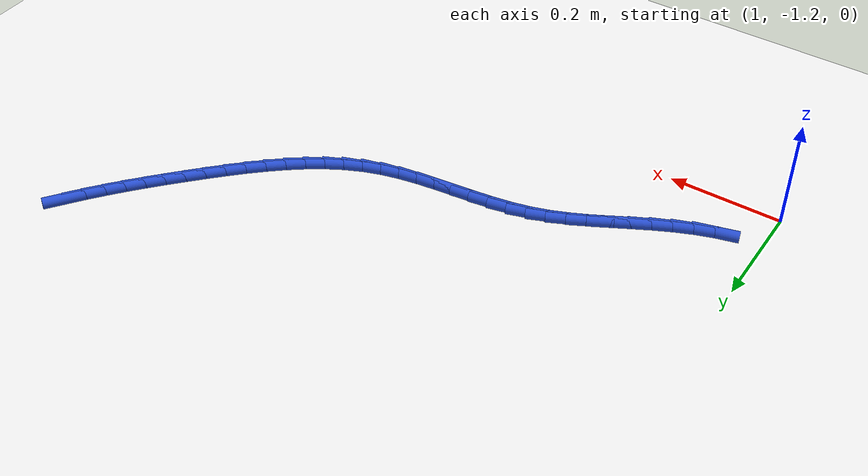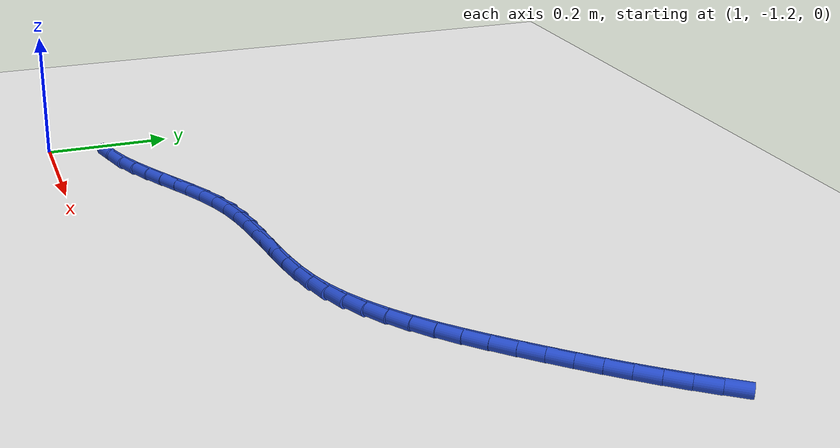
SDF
<sdf version="1.6">
 <world name="default">
  <model name="ground_plane">
   <static>1</static>
   <link name="link">
    <collision name="collision">
     <geometry><plane><normal>0 0 1</normal><size>100 100</size></plane></geometry>
     <surface><friction><ode><mu>100</mu><mu2>50</mu2></ode></friction></surface>
    </collision>
    <visual name="visual">
     <cast_shadows>0</cast_shadows>
     <geometry><plane><normal>0 0 1</normal><size>100 100</size></plane></geometry>
     <material>
      <script><uri>file://media/materials/scripts/gazebo.material</uri><name>Gazebo/WhiteGlow</name></script>
     </material>
    </visual>
   </link>
  </model>
  <model name="line">
   <link name="link_117">
    <pose>2.0267143364783347 -0.5705597552615382 0.01 0 1.57 0.9391672660725827</pose>
    <collision name="collision">
     <geometry><cylinder><radius>0.01</radius><length>0.08</length></cylinder></geometry>
    </collision>
    <visual name="visual">
     <material>
      <script><name>Gazebo/Blue</name><uri>file://media/materials/scripts/gazebo.material</uri></script>
     </material>
     <geometry><cylinder><radius>0.01</radius><length>0.08</length></cylinder></geometry>
    </visual>
   </link>
   <link name="link_118">
    <pose>2.00673356498799 -0.5978703381222364 0.01 0 1.57 0.9115270872024426</pose>
    <collision name="collision">
     <geometry><cylinder><radius>0.01</radius><length>0.08</length></cylinder></geometry>
    </collision>
    <visual name="visual">
     <material>
      <script><name>Gazebo/Blue</name><uri>file://media/materials/scripts/gazebo.material</uri></script>
     </material>
     <geometry><cylinder><radius>0.01</radius><length>0.08</length></cylinder></geometry>
    </visual>
   </link>
   <link name="link_119">
    <pose>1.9860033802236179 -0.6246212193084802 0.01 0 1.57 0.8869642805124498</pose>
    <collision name="collision">
     <geometry><cylinder><radius>0.01</radius><length>0.08</length></cylinder></geometry>
    </collision>
    <visual name="visual">
     <material>
      <script><name>Gazebo/Blue</name><uri>file://media/materials/scripts/gazebo.material</uri></script>
     </material>
     <geometry><cylinder><radius>0.01</radius><length>0.08</length></cylinder></geometry>
    </visual>
   </link>
   <link name="link_120">
    <pose>1.9645729542387582 -0.6509156057035729 0.01 0 1.57 0.8655963539938245</pose>
    <collision name="collision">
     <geometry><cylinder><radius>0.01</radius><length>0.08</length></cylinder></geometry>
    </collision>
    <visual name="visual">
     <material>
      <script><name>Gazebo/Blue</name><uri>file://media/materials/scripts/gazebo.material</uri></script>
     </material>
     <geometry><cylinder><radius>0.01</radius><length>0.08</length></cylinder></geometry>
    </visual>
   </link>
   <link name="link_121">
    <pose>1.9424914590869524 -0.6768567041908178 0.01 0 1.57 0.8474921250662898</pose>
    <collision name="collision">
     <geometry><cylinder><radius>0.01</radius><length>0.08</length></cylinder></geometry>
    </collision>
    <visual name="visual">
     <material>
      <script><name>Gazebo/Blue</name><uri>file://media/materials/scripts/gazebo.material</uri></script>
     </material>
     <geometry><cylinder><radius>0.01</radius><length>0.08</length></cylinder></geometry>
    </visual>
   </link>
   <link name="link_122">
    <pose>1.9198080668217403 -0.7025477216535183 0.01 0 1.57 0.8326776563826974</pose>
    <collision name="collision">
     <geometry><cylinder><radius>0.01</radius><length>0.08</length></cylinder></geometry>
    </collision>
    <visual name="visual">
     <material>
      <script><name>Gazebo/Blue</name><uri>file://media/materials/scripts/gazebo.material</uri></script>
     </material>
     <geometry><cylinder><radius>0.01</radius><length>0.08</length></cylinder></geometry>
    </visual>
   </link>
   <link name="link_123">
    <pose>1.896571949496663 -0.728091864974978 0.01 0 1.57 0.8209237702100893</pose>
    <collision name="collision">
     <geometry><cylinder><radius>0.01</radius><length>0.08</length></cylinder></geometry>
    </collision>
    <visual name="visual">
     <material>
      <script><name>Gazebo/Blue</name><uri>file://media/materials/scripts/gazebo.material</uri></script>
     </material>
     <geometry><cylinder><radius>0.01</radius><length>0.08</length></cylinder></geometry>
    </visual>
   </link>
   <link name="link_124">
    <pose>1.8728297888993164 -0.7535838340945666 0.01 0 1.57 0.80666013582945</pose>
    <collision name="collision">
     <geometry><cylinder><radius>0.01</radius><length>0.08</length></cylinder></geometry>
    </collision>
    <visual name="visual">
     <material>
      <script><name>Gazebo/Blue</name><uri>file://media/materials/scripts/gazebo.material</uri></script>
     </material>
     <geometry><cylinder><radius>0.01</radius><length>0.08</length></cylinder></geometry>
    </visual>
   </link>
   <link name="link_125">
    <pose>1.8485651862934918 -0.7789028409309093 0.01 0 1.57 0.7839528318070189</pose>
    <collision name="collision">
     <geometry><cylinder><radius>0.01</radius><length>0.08</length></cylinder></geometry>
    </collision>
    <visual name="visual">
     <material>
      <script><name>Gazebo/Blue</name><uri>file://media/materials/scripts/gazebo.material</uri></script>
     </material>
     <geometry><cylinder><radius>0.01</radius><length>0.08</length></cylinder></geometry>
    </visual>
   </link>
   <link name="link_126">
    <pose>1.8236952586175739 -0.8037009817284397 0.01 0 1.57 0.7522095441276434</pose>
    <collision name="collision">
     <geometry><cylinder><radius>0.01</radius><length>0.08</length></cylinder></geometry>
    </collision>
    <visual name="visual">
     <material>
      <script><name>Gazebo/Blue</name><uri>file://media/materials/scripts/gazebo.material</uri></script>
     </material>
     <geometry><cylinder><radius>0.01</radius><length>0.08</length></cylinder></geometry>
    </visual>
   </link>
   <link name="link_127">
    <pose>1.7981339511942152 -0.8276195182433042 0.01 0 1.57 0.7109008866119434</pose>
    <collision name="collision">
     <geometry><cylinder><radius>0.01</radius><length>0.08</length></cylinder></geometry>
    </collision>
    <visual name="visual">
     <material>
      <script><name>Gazebo/Blue</name><uri>file://media/materials/scripts/gazebo.material</uri></script>
     </material>
     <geometry><cylinder><radius>0.01</radius><length>0.08</length></cylinder></geometry>
    </visual>
   </link>
   <link name="link_128">
    <pose>1.7717952093460698 -0.8502997122316487 0.01 0 1.57 0.6593418593124224</pose>
    <collision name="collision">
     <geometry><cylinder><radius>0.01</radius><length>0.08</length></cylinder></geometry>
    </collision>
    <visual name="visual">
     <material>
      <script><name>Gazebo/Blue</name><uri>file://media/materials/scripts/gazebo.material</uri></script>
     </material>
     <geometry><cylinder><radius>0.01</radius><length>0.08</length></cylinder></geometry>
    </visual>
   </link>
   <link name="link_129">
    <pose>1.7445929783957912 -0.87138282544962 0.01 0 1.57 0.5967900386684333</pose>
    <collision name="collision">
     <geometry><cylinder><radius>0.01</radius><length>0.08</length></cylinder></geometry>
    </collision>
    <visual name="visual">
     <material>
      <script><name>Gazebo/Blue</name><uri>file://media/materials/scripts/gazebo.material</uri></script>
     </material>
     <geometry><cylinder><radius>0.01</radius><length>0.08</length></cylinder></geometry>
    </visual>
   </link>
   <link name="link_130">
    <pose>1.7164412036660328 -0.8905101196533641 0.01 0 1.57 0.5226063192275898</pose>
    <collision name="collision">
     <geometry><cylinder><radius>0.01</radius><length>0.08</length></cylinder></geometry>
    </collision>
    <visual name="visual">
     <material>
      <script><name>Gazebo/Blue</name><uri>file://media/materials/scripts/gazebo.material</uri></script>
     </material>
     <geometry><cylinder><radius>0.01</radius><length>0.08</length></cylinder></geometry>
    </visual>
   </link>
   <link name="link_131">
    <pose>1.6872538304794482 -0.9073228565990276 0.01 0 1.57 0.4364978948128601</pose>
    <collision name="collision">
     <geometry><cylinder><radius>0.01</radius><length>0.08</length></cylinder></geometry>
    </collision>
    <visual name="visual">
     <material>
      <script><name>Gazebo/Blue</name><uri>file://media/materials/scripts/gazebo.material</uri></script>
     </material>
     <geometry><cylinder><radius>0.01</radius><length>0.08</length></cylinder></geometry>
    </visual>
   </link>
   <link name="link_132">
    <pose>1.6569448041586905 -0.9214622980427563 0.01 0 1.57 0.33942588537874113</pose>
    <collision name="collision">
     <geometry><cylinder><radius>0.01</radius><length>0.08</length></cylinder></geometry>
    </collision>
    <visual name="visual">
     <material>
      <script><name>Gazebo/Blue</name><uri>file://media/materials/scripts/gazebo.material</uri></script>
     </material>
     <geometry><cylinder><radius>0.01</radius><length>0.08</length></cylinder></geometry>
    </visual>
   </link>
   <link name="link_133">
    <pose>1.625434357737979 -0.9325883548340298 0.01 0 1.57 0.24803831458984218</pose>
    <collision name="collision">
     <geometry><cylinder><radius>0.01</radius><length>0.08</length></cylinder></geometry>
    </collision>
    <visual name="visual">
     <material>
      <script><name>Gazebo/Blue</name><uri>file://media/materials/scripts/gazebo.material</uri></script>
     </material>
     <geometry><cylinder><radius>0.01</radius><length>0.08</length></cylinder></geometry>
    </visual>
   </link>
   <link name="link_134">
    <pose>1.5928079848645034 -0.9408510939886058 0.01 0 1.57 0.17954002413626208</pose>
    <collision name="collision">
     <geometry><cylinder><radius>0.01</radius><length>0.08</length></cylinder></geometry>
    </collision>
    <visual name="visual">
     <material>
      <script><name>Gazebo/Blue</name><uri>file://media/materials/scripts/gazebo.material</uri></script>
     </material>
     <geometry><cylinder><radius>0.01</radius><length>0.08</length></cylinder></geometry>
    </visual>
   </link>
   <link name="link_135">
    <pose>1.559328793245793 -0.9469273785042219 0.01 0 1.57 0.1340319506731997</pose>
    <collision name="collision">
     <geometry><cylinder><radius>0.01</radius><length>0.08</length></cylinder></geometry>
    </collision>
    <visual name="visual">
     <material>
      <script><name>Gazebo/Blue</name><uri>file://media/materials/scripts/gazebo.material</uri></script>
     </material>
     <geometry><cylinder><radius>0.01</radius><length>0.08</length></cylinder></geometry>
    </visual>
   </link>
   <link name="link_136">
    <pose>1.5252686530161537 -0.9515200603752609 0.01 0 1.57 0.11045974169156483</pose>
    <collision name="collision">
     <geometry><cylinder><radius>0.01</radius><length>0.08</length></cylinder></geometry>
    </collision>
    <visual name="visual">
     <material>
      <script><name>Gazebo/Blue</name><uri>file://media/materials/scripts/gazebo.material</uri></script>
     </material>
     <geometry><cylinder><radius>0.01</radius><length>0.08</length></cylinder></geometry>
    </visual>
   </link>
   <link name="link_137">
    <pose>1.4908994343098896 -0.9553319915961045 0.01 0 1.57 0.10810408471435345</pose>
    <collision name="collision">
     <geometry><cylinder><radius>0.01</radius><length>0.08</length></cylinder></geometry>
    </collision>
    <visual name="visual">
     <material>
      <script><name>Gazebo/Blue</name><uri>file://media/materials/scripts/gazebo.material</uri></script>
     </material>
     <geometry><cylinder><radius>0.01</radius><length>0.08</length></cylinder></geometry>
    </visual>
   </link>
   <link name="link_138">
    <pose>1.4564930072613056 -0.9590660241611354 0.01 0 1.57 0.12687583368746397</pose>
    <collision name="collision">
     <geometry><cylinder><radius>0.01</radius><length>0.08</length></cylinder></geometry>
    </collision>
    <visual name="visual">
     <material>
      <script><name>Gazebo/Blue</name><uri>file://media/materials/scripts/gazebo.material</uri></script>
     </material>
     <geometry><cylinder><radius>0.01</radius><length>0.08</length></cylinder></geometry>
    </visual>
   </link>
   <link name="link_139">
    <pose>1.4223212420047093 -0.9634250100647364 0.01 0 1.57 0.16734203896053298</pose>
    <collision name="collision">
     <geometry><cylinder><radius>0.01</radius><length>0.08</length></cylinder></geometry>
    </collision>
    <visual name="visual">
     <material>
      <script><name>Gazebo/Blue</name><uri>file://media/materials/scripts/gazebo.material</uri></script>
     </material>
     <geometry><cylinder><radius>0.01</radius><length>0.08</length></cylinder></geometry>
    </visual>
   </link>
   <link name="link_140">
    <pose>1.3886560086744035 -0.9691118013012889 0.01 0 1.57 0.23049620686302222</pose>
    <collision name="collision">
     <geometry><cylinder><radius>0.01</radius><length>0.08</length></cylinder></geometry>
    </collision>
    <visual name="visual">
     <material>
      <script><name>Gazebo/Blue</name><uri>file://media/materials/scripts/gazebo.material</uri></script>
     </material>
     <geometry><cylinder><radius>0.01</radius><length>0.08</length></cylinder></geometry>
    </visual>
   </link>
   <link name="link_141">
    <pose>1.3557691774046952 -0.9768292498651754 0.01 0 1.57 0.3152195040034267</pose>
    <collision name="collision">
     <geometry><cylinder><radius>0.01</radius><length>0.08</length></cylinder></geometry>
    </collision>
    <visual name="visual">
     <material>
      <script><name>Gazebo/Blue</name><uri>file://media/materials/scripts/gazebo.material</uri></script>
     </material>
     <geometry><cylinder><radius>0.01</radius><length>0.08</length></cylinder></geometry>
    </visual>
   </link>
   <link name="link_142">
    <pose>1.3239068169768906 -0.9872193193566344 0.01 0 1.57 0.3959597588820058</pose>
    <collision name="collision">
     <geometry><cylinder><radius>0.01</radius><length>0.08</length></cylinder></geometry>
    </collision>
    <visual name="visual">
     <material>
      <script><name>Gazebo/Blue</name><uri>file://media/materials/scripts/gazebo.material</uri></script>
     </material>
     <geometry><cylinder><radius>0.01</radius><length>0.08</length></cylinder></geometry>
    </visual>
   </link>
   <link name="link_143">
    <pose>1.2929852240417237 -1.0001457469214092 0.01 0 1.57 0.4541664356844477</pose>
    <collision name="collision">
     <geometry><cylinder><radius>0.01</radius><length>0.08</length></cylinder></geometry>
    </collision>
    <visual name="visual">
     <material>
      <script><name>Gazebo/Blue</name><uri>file://media/materials/scripts/gazebo.material</uri></script>
     </material>
     <geometry><cylinder><radius>0.01</radius><length>0.08</length></cylinder></geometry>
    </visual>
   </link>
   <link name="link_144">
    <pose>1.2626928599984972 -1.0149346032274233 0.01 0 1.57 0.4893790462723225</pose>
    <collision name="collision">
     <geometry><cylinder><radius>0.01</radius><length>0.08</length></cylinder></geometry>
    </collision>
    <visual name="visual">
     <material>
      <script><name>Gazebo/Blue</name><uri>file://media/materials/scripts/gazebo.material</uri></script>
     </material>
     <geometry><cylinder><radius>0.01</radius><length>0.08</length></cylinder></geometry>
    </visual>
   </link>
   <link name="link_145">
    <pose>1.232713650201788 -1.0309012543691163 0.01 0 1.57 0.5020654599663065</pose>
    <collision name="collision">
     <geometry><cylinder><radius>0.01</radius><length>0.08</length></cylinder></geometry>
    </collision>
    <visual name="visual">
     <material>
      <script><name>Gazebo/Blue</name><uri>file://media/materials/scripts/gazebo.material</uri></script>
     </material>
     <geometry><cylinder><radius>0.01</radius><length>0.08</length></cylinder></geometry>
    </visual>
   </link>
   <link name="link_146">
    <pose>1.2027315200061723 -1.047361066440928 0.01 0 1.57 0.4927214463973421</pose>
    <collision name="collision">
     <geometry><cylinder><radius>0.01</radius><length>0.08</length></cylinder></geometry>
    </collision>
    <visual name="visual">
     <material>
      <script><name>Gazebo/Blue</name><uri>file://media/materials/scripts/gazebo.material</uri></script>
     </material>
     <geometry><cylinder><radius>0.01</radius><length>0.08</length></cylinder></geometry>
    </visual>
   </link>
   <link name="link_147">
    <pose>1.1724303947662262 -1.0636294055372972 0.01 0 1.57 0.4616838343799558</pose>
    <collision name="collision">
     <geometry><cylinder><radius>0.01</radius><length>0.08</length></cylinder></geometry>
    </collision>
    <visual name="visual">
     <material>
      <script><name>Gazebo/Blue</name><uri>file://media/materials/scripts/gazebo.material</uri></script>
     </material>
     <geometry><cylinder><radius>0.01</radius><length>0.08</length></cylinder></geometry>
    </visual>
   </link>
   <link name="link_148">
    <pose>1.1414941998365271 -1.0790216377526642 0.01 0 1.57 0.4092680205677874</pose>
    <collision name="collision">
     <geometry><cylinder><radius>0.01</radius><length>0.08</length></cylinder></geometry>
    </collision>
    <visual name="visual">
     <material>
      <script><name>Gazebo/Blue</name><uri>file://media/materials/scripts/gazebo.material</uri></script>
     </material>
     <geometry><cylinder><radius>0.01</radius><length>0.08</length></cylinder></geometry>
    </visual>
   </link>
   <link name="link_149">
    <pose>1.109606860571651 -1.0928531291814678 0.01 0 1.57 0.33876756223888477</pose>
    <collision name="collision">
     <geometry><cylinder><radius>0.01</radius><length>0.08</length></cylinder></geometry>
    </collision>
    <visual name="visual">
     <material>
      <script><name>Gazebo/Blue</name><uri>file://media/materials/scripts/gazebo.material</uri></script>
     </material>
     <geometry><cylinder><radius>0.01</radius><length>0.08</length></cylinder></geometry>
    </visual>
   </link>
   <link name="link_150">
    <pose>1.0765169880290544 -1.1045123732090394 0.01 0 1.57 0.2659140028463565</pose>
    <collision name="collision">
     <geometry><cylinder><radius>0.01</radius><length>0.08</length></cylinder></geometry>
    </collision>
    <visual name="visual">
     <material>
      <script><name>Gazebo/Blue</name><uri>file://media/materials/scripts/gazebo.material</uri></script>
     </material>
     <geometry><cylinder><radius>0.01</radius><length>0.08</length></cylinder></geometry>
    </visual>
   </link>
  </model>
 </world>
</sdf>
